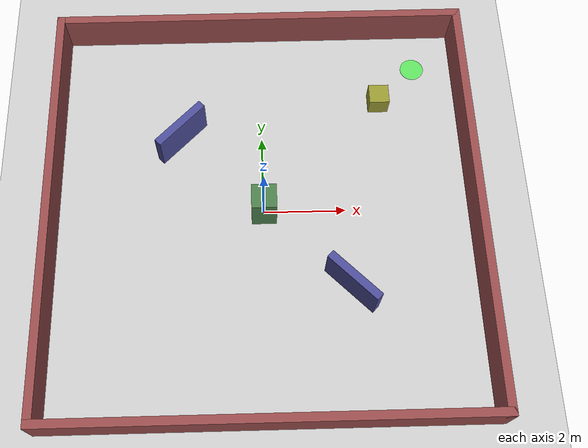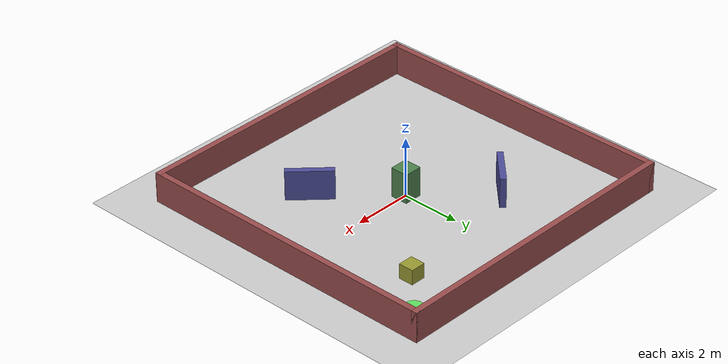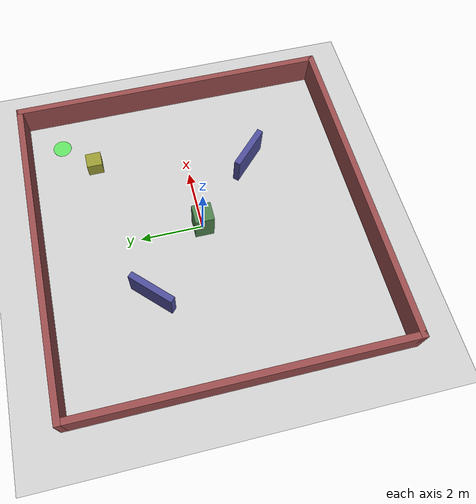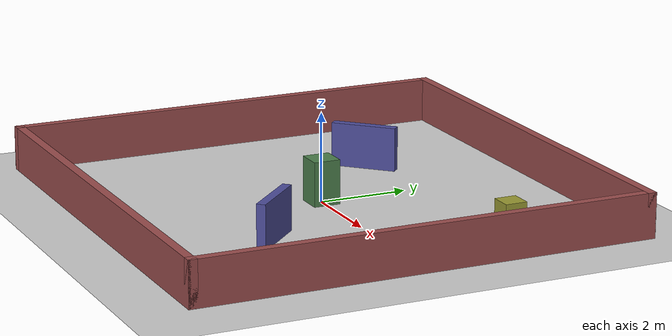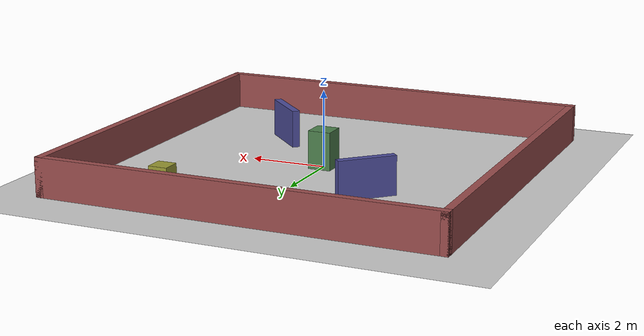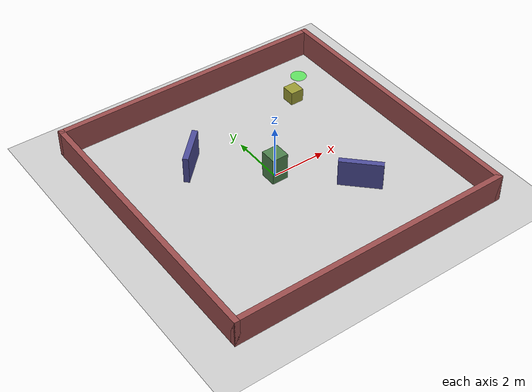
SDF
<?xml version="1.0" ?>
<sdf version="1.6">
  <world name="scout_mini_test_world">

    <!-- Physics -->
    <physics name="1ms" type="ignored">
      <max_step_size>0.001</max_step_size>
      <real_time_factor>1.0</real_time_factor>
    </physics>
    <plugin
      filename="ignition-gazebo-physics-system"
      name="ignition::gazebo::systems::Physics">
    </plugin>
    <plugin
      filename="ignition-gazebo-scene-broadcaster-system"
      name="ignition::gazebo::systems::SceneBroadcaster">
    </plugin>
    <plugin
      filename="ignition-gazebo-contact-system"
      name="ignition::gazebo::systems::Contact">
    </plugin>
    <plugin
      filename="ignition-gazebo-imu-system"
      name="ignition::gazebo::systems::Imu">
    </plugin>

    <!-- Lighting -->
    <scene>
      <ambient>0.4 0.4 0.4 1.0</ambient>
      <background>0.7 0.7 0.7 1.0</background>
      <shadows>true</shadows>
    </scene>

    <!-- Sun -->
    <light type="directional" name="sun">
      <cast_shadows>true</cast_shadows>
      <pose>0 0 10 0 0 0</pose>
      <diffuse>0.8 0.8 0.8 1.0</diffuse>
      <specular>0.2 0.2 0.2 1.0</specular>
      <attenuation>
        <range>1000</range>
        <constant>0.9</constant>
        <linear>0.01</linear>
        <quadratic>0.001</quadratic>
      </attenuation>
      <direction>-0.5 0.1 -0.9</direction>
    </light>

    <!-- Ground Plane -->
    <model name="ground_plane">
      <static>true</static>
      <link name="link">
        <collision name="collision">
          <geometry>
            <plane>
              <normal>0 0 1</normal>
              <size>100 100</size>
            </plane>
          </geometry>
        </collision>
        <visual name="visual">
          <geometry>
            <plane>
              <normal>0 0 1</normal>
              <size>100 100</size>
            </plane>
          </geometry>
          <material>
            <ambient>0.8 0.8 0.8 1.0</ambient>
            <diffuse>0.8 0.8 0.8 1.0</diffuse>
            <specular>0.1 0.1 0.1 1.0</specular>
          </material>
        </visual>
      </link>
    </model>

    <!-- ==================== WALLS (Navigation Arena) ==================== -->
    <!-- Outer walls: 10m x 10m arena -->
    <xmacro_define name="wall_thickness" value="0.2"/>
    <xmacro_define name="wall_height" value="1.0"/>
    <xmacro_define name="arena_size" value="10.0"/>

    <!-- North Wall -->
    <model name="wall_north">
      <static>true</static>
      <pose>0 5.1 0.5 0 0 0</pose>
      <link name="link">
        <collision name="collision">
          <geometry>
            <box><size>10.4 0.2 1.0</size></box>
          </geometry>
        </collision>
        <visual name="visual">
          <geometry>
            <box><size>10.4 0.2 1.0</size></box>
          </geometry>
          <material>
            <ambient>0.6 0.3 0.3 1.0</ambient>
            <diffuse>0.6 0.3 0.3 1.0</diffuse>
          </material>
        </visual>
      </link>
    </model>

    <!-- South Wall -->
    <model name="wall_south">
      <static>true</static>
      <pose>0 -5.1 0.5 0 0 0</pose>
      <link name="link">
        <collision name="collision">
          <geometry>
            <box><size>10.4 0.2 1.0</size></box>
          </geometry>
        </collision>
        <visual name="visual">
          <geometry>
            <box><size>10.4 0.2 1.0</size></box>
          </geometry>
          <material>
            <ambient>0.6 0.3 0.3 1.0</ambient>
            <diffuse>0.6 0.3 0.3 1.0</diffuse>
          </material>
        </visual>
      </link>
    </model>

    <!-- East Wall -->
    <model name="wall_east">
      <static>true</static>
      <pose>5.1 0 0.5 0 0 0</pose>
      <link name="link">
        <collision name="collision">
          <geometry>
            <box><size>0.2 10.4 1.0</size></box>
          </geometry>
        </collision>
        <visual name="visual">
          <geometry>
            <box><size>0.2 10.4 1.0</size></box>
          </geometry>
          <material>
            <ambient>0.6 0.3 0.3 1.0</ambient>
            <diffuse>0.6 0.3 0.3 1.0</diffuse>
          </material>
        </visual>
      </link>
    </model>

    <!-- West Wall -->
    <model name="wall_west">
      <static>true</static>
      <pose>-5.1 0 0.5 0 0 0</pose>
      <link name="link">
        <collision name="collision">
          <geometry>
            <box><size>0.2 10.4 1.0</size></box>
          </geometry>
        </collision>
        <visual name="visual">
          <geometry>
            <box><size>0.2 10.4 1.0</size></box>
          </geometry>
          <material>
            <ambient>0.6 0.3 0.3 1.0</ambient>
            <diffuse>0.6 0.3 0.3 1.0</diffuse>
          </material>
        </visual>
      </link>
    </model>

    <!-- ==================== INNER OBSTACLES ==================== -->
    <!-- Obstacle 1: Central pillar -->
    <model name="obstacle_center">
      <static>true</static>
      <pose>0 0 0.5 0 0 0</pose>
      <link name="link">
        <collision name="collision">
          <geometry>
            <box><size>0.6 0.6 1.0</size></box>
          </geometry>
        </collision>
        <visual name="visual">
          <geometry>
            <box><size>0.6 0.6 1.0</size></box>
          </geometry>
          <material>
            <ambient>0.3 0.5 0.3 1.0</ambient>
            <diffuse>0.3 0.5 0.3 1.0</diffuse>
          </material>
        </visual>
      </link>
    </model>

    <!-- Obstacle 2: Left corridor wall -->
    <model name="obstacle_left">
      <static>true</static>
      <pose>-2.0 2.0 0.5 0 0 0.785</pose>
      <link name="link">
        <collision name="collision">
          <geometry>
            <box><size>1.5 0.2 1.0</size></box>
          </geometry>
        </collision>
        <visual name="visual">
          <geometry>
            <box><size>1.5 0.2 1.0</size></box>
          </geometry>
          <material>
            <ambient>0.3 0.3 0.6 1.0</ambient>
            <diffuse>0.3 0.3 0.6 1.0</diffuse>
          </material>
        </visual>
      </link>
    </model>

    <!-- Obstacle 3: Right corridor wall -->
    <model name="obstacle_right">
      <static>true</static>
      <pose>2.0 -2.0 0.5 0 0 -0.785</pose>
      <link name="link">
        <collision name="collision">
          <geometry>
            <box><size>1.5 0.2 1.0</size></box>
          </geometry>
        </collision>
        <visual name="visual">
          <geometry>
            <box><size>1.5 0.2 1.0</size></box>
          </geometry>
          <material>
            <ambient>0.3 0.3 0.6 1.0</ambient>
            <diffuse>0.3 0.3 0.6 1.0</diffuse>
          </material>
        </visual>
      </link>
    </model>

    <!-- Obstacle 4: Small box near goal area -->
    <model name="obstacle_box">
      <static>true</static>
      <pose>3.0 3.0 0.25 0 0 0</pose>
      <link name="link">
        <collision name="collision">
          <geometry>
            <box><size>0.5 0.5 0.5</size></box>
          </geometry>
        </collision>
        <visual name="visual">
          <geometry>
            <box><size>0.5 0.5 0.5</size></box>
          </geometry>
          <material>
            <ambient>0.6 0.6 0.2 1.0</ambient>
            <diffuse>0.6 0.6 0.2 1.0</diffuse>
          </material>
        </visual>
      </link>
    </model>

    <!-- Goal marker (visual only, no collision) -->
    <model name="goal_marker">
      <static>true</static>
      <pose>4.0 4.0 0.01 0 0 0</pose>
      <link name="link">
        <visual name="visual">
          <geometry>
            <cylinder><radius>0.3</radius><length>0.02</length></cylinder>
          </geometry>
          <material>
            <ambient>0.0 1.0 0.0 0.5</ambient>
            <diffuse>0.0 1.0 0.0 0.5</diffuse>
            <transparency>0.5</transparency>
          </material>
        </visual>
      </link>
    </model>

  </world>
</sdf>
